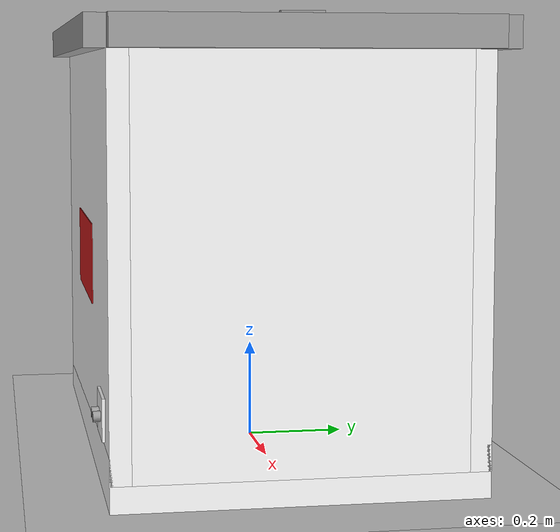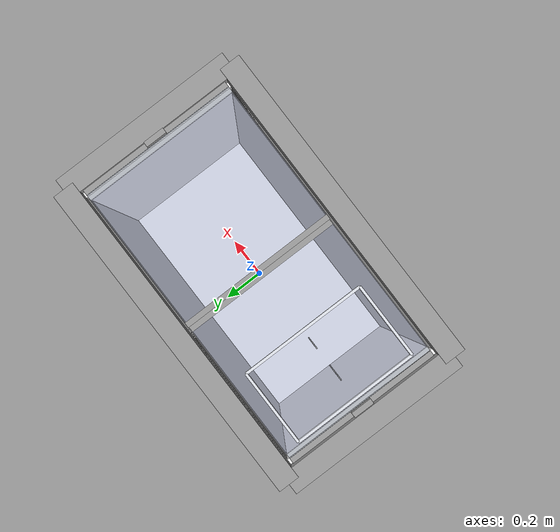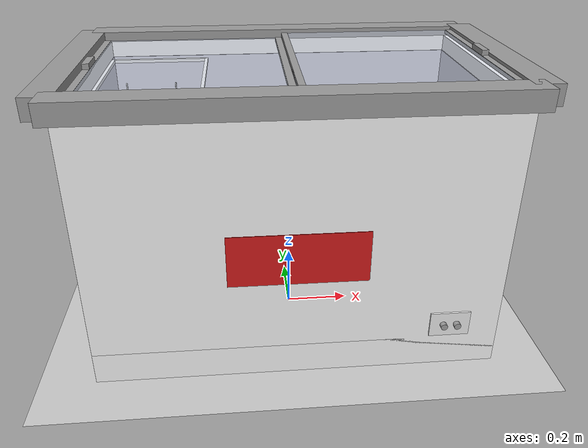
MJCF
<mujoco model="chest_freezer">
  <compiler angle="degree" coordinate="local"/>
  <option timestep="0.01" gravity="0 0 -9.81"/>

  <visual>
    <headlight ambient="0.6 0.6 0.6"/>
    <global offwidth="1920" offheight="1080"/>
  </visual>

  <asset>
    <texture type="skybox" builtin="gradient" rgb1="0.9 0.9 1" rgb2="1 1 1" width="512" height="512"/>

    <!-- Materials -->
    <material name="white_paint" rgba="0.95 0.95 0.95 1" specular="0.5" shininess="0.5" reflectance="0.1"/>
    <material name="grey_plastic" rgba="0.6 0.6 0.6 1" specular="0.3" shininess="0.3"/>
    <material name="silver_lining" rgba="0.8 0.8 0.85 1" specular="0.8" shininess="0.8" reflectance="0.4"/>
    <material name="glass" rgba="0.85 0.9 1 0.3" specular="0.9" shininess="0.95" reflectance="0.3"/>
    <material name="white_mesh" rgba="0.9 0.9 0.9 1" specular="0.2" shininess="0.2"/>
    <material name="red_logo" rgba="0.8 0.1 0.1 1" specular="0.5" shininess="0.5"/>
    <material name="control_panel" rgba="0.9 0.9 0.9 1" specular="0.5" shininess="0.5"/>
  </asset>

  <worldbody>
    <light pos="0 0 3" dir="0 0 -1" diffuse="0.8 0.8 0.8"/>
    <geom name="floor" type="plane" size="5 5 0.1" material="white_paint" rgba="0.8 0.8 0.8 1"/>

    <!-- Chest Freezer Body -->
    <!-- Dimensions: 1.2m (W) x 0.7m (D) x 0.85m (H) -->
    <!-- Center bottom at 0,0,0 -->
    <body name="freezer" pos="0 0 0">

      <!-- Base (White) -->
      <geom name="base" type="box" size="0.6 0.35 0.05" pos="0 0 0.05" material="white_paint"/>

      <!-- Internal Floor (Silver) - Slightly above base -->
      <geom name="floor_lining" type="box" size="0.56 0.31 0.001" pos="0 0 0.101" material="silver_lining"/>

      <!-- Walls -->
      <!-- Front Wall -->
      <geom name="front_wall" type="box" size="0.6 0.02 0.4" pos="0 -0.33 0.45" material="white_paint"/>
      <!-- Front Wall Lining -->
      <geom name="front_lining" type="box" size="0.56 0.001 0.35" pos="0 -0.309 0.45" material="silver_lining"/>

      <!-- Back Wall -->
      <geom name="back_wall" type="box" size="0.6 0.02 0.4" pos="0 0.33 0.45" material="white_paint"/>
      <!-- Back Wall Lining -->
      <geom name="back_lining" type="box" size="0.56 0.001 0.35" pos="0 0.309 0.45" material="silver_lining"/>

      <!-- Left Wall -->
      <geom name="left_wall" type="box" size="0.02 0.31 0.4" pos="-0.58 0 0.45" material="white_paint"/>
      <!-- Left Wall Lining -->
      <geom name="left_lining" type="box" size="0.001 0.309 0.35" pos="-0.559 0 0.45" material="silver_lining"/>

      <!-- Right Wall -->
      <geom name="right_wall" type="box" size="0.02 0.31 0.4" pos="0.58 0 0.45" material="white_paint"/>
      <!-- Right Wall Lining -->
      <geom name="right_lining" type="box" size="0.001 0.309 0.35" pos="0.559 0 0.45" material="silver_lining"/>

      <!-- Top Frame (Grey) -->
      <!-- Front Frame -->
      <geom name="frame_front" type="box" size="0.62 0.04 0.03" pos="0 -0.35 0.85" material="grey_plastic"/>
      <!-- Back Frame -->
      <geom name="frame_back" type="box" size="0.62 0.04 0.03" pos="0 0.35 0.85" material="grey_plastic"/>
      <!-- Left Frame -->
      <geom name="frame_left" type="box" size="0.04 0.35 0.03" pos="-0.62 0 0.85" material="grey_plastic"/>
      <!-- Right Frame -->
      <geom name="frame_right" type="box" size="0.04 0.35 0.03" pos="0.62 0 0.85" material="grey_plastic"/>

      <!-- Logo Area (Front) -->
      <geom name="logo_text" type="box" size="0.2 0.001 0.08" pos="0 -0.351 0.4" material="red_logo"/>

      <!-- Control Panel (Bottom Right Front) -->
      <geom name="control" type="box" size="0.06 0.005 0.04" pos="0.45 -0.351 0.15" material="control_panel"/>
      <geom name="knob1" type="cylinder" size="0.01 0.01" pos="0.43 -0.36 0.15" euler="90 0 0" material="grey_plastic"/>
      <geom name="knob2" type="cylinder" size="0.01 0.01" pos="0.47 -0.36 0.15" euler="90 0 0" material="grey_plastic"/>

      <!-- Basket (Wire mesh simplified as transparent box with frame) -->
      <body name="basket" pos="-0.4 0 0.6">
        <!-- Rim -->
        <geom name="basket_rim_f" type="box" size="0.15 0.005 0.005" pos="0 -0.25 0.2" material="white_mesh"/>
        <geom name="basket_rim_b" type="box" size="0.15 0.005 0.005" pos="0 0.25 0.2" material="white_mesh"/>
        <geom name="basket_rim_l" type="box" size="0.005 0.25 0.005" pos="-0.15 0 0.2" material="white_mesh"/>
        <geom name="basket_rim_r" type="box" size="0.005 0.25 0.005" pos="0.15 0 0.2" material="white_mesh"/>

        <!-- Body (Visual simplified) -->
        <geom name="basket_body" type="box" size="0.14 0.24 0.15" pos="0 0 0.05" material="white_mesh" rgba="0.9 0.9 0.9 0.2"/>
        <!-- Vertical wires (Visual) -->
        <geom name="wire1" type="capsule" size="0.002 0.15" pos="-0.07 0 0.05" material="white_mesh"/>
        <geom name="wire2" type="capsule" size="0.002 0.15" pos="0.07 0 0.05" material="white_mesh"/>
      </body>

      <!-- Sliding Doors -->
      <!-- Left Door (Inner track) -->
      <body name="door_left" pos="-0.29 0 0.85">
        <joint name="slide_left" type="slide" axis="1 0 0" range="0 0.55" damping="1.0"/>
        <!-- Glass -->
        <geom name="glass_left" type="box" size="0.29 0.3 0.005" pos="0 0 0" material="glass"/>
        <!-- Frame -->
        <geom name="frame_l_l" type="box" size="0.01 0.3 0.006" pos="-0.28 0 0" material="grey_plastic"/>
        <geom name="frame_l_r" type="box" size="0.01 0.3 0.006" pos="0.28 0 0" material="grey_plastic"/>
        <!-- Handle optimized: moved to outer edge for better visibility -->
        <geom name="handle_left" type="box" size="0.01 0.04 0.008" pos="-0.28 0 0.014" material="grey_plastic"/>
      </body>

      <!-- Right Door (Outer track, slightly higher) -->
      <body name="door_right" pos="0.29 0 0.865">
        <joint name="slide_right" type="slide" axis="-1 0 0" range="0 0.55" damping="1.0"/>
        <!-- Glass -->
        <geom name="glass_right" type="box" size="0.29 0.3 0.005" pos="0 0 0" material="glass"/>
        <!-- Frame -->
        <geom name="frame_r_l" type="box" size="0.01 0.3 0.006" pos="-0.28 0 0" material="grey_plastic"/>
        <geom name="frame_r_r" type="box" size="0.01 0.3 0.006" pos="0.28 0 0" material="grey_plastic"/>
        <!-- Handle optimized: moved to outer edge for better visibility -->
        <geom name="handle_right" type="box" size="0.01 0.04 0.008" pos="0.28 0 0.014" material="grey_plastic"/>
      </body>

    </body>
  </worldbody>
</mujoco>
